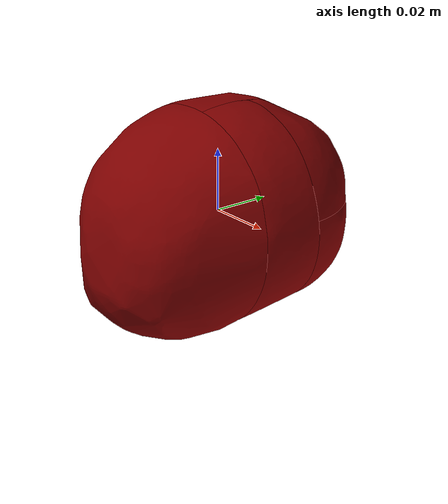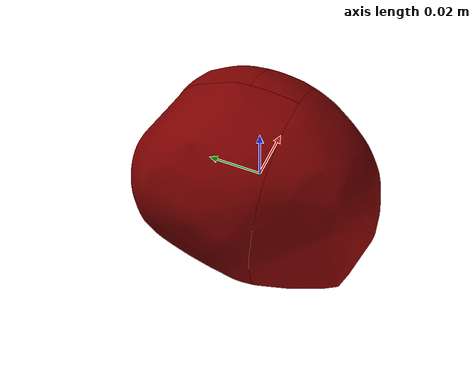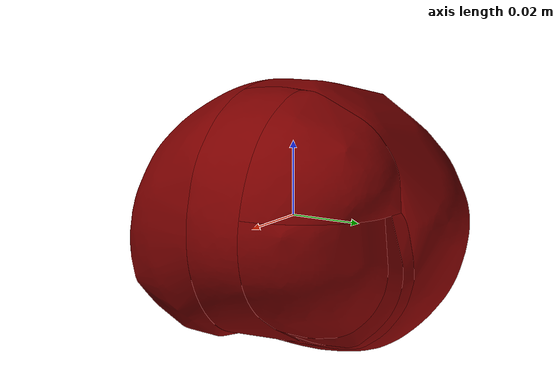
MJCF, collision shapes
<?xml version='1.0' encoding='utf-8'?>
<mujoco model="potato_8">
  <asset>
    <mesh file="visual/model_normalized_0.obj" name="model_normalized_0_vis" scale="0.08999999999999996 0.08999999999999996 0.08999999999999996" refquat="1.0 0.0 0.0 0.0" />
    <texture type="2d" name="image0" file="visual/image0.png" />
    <material name="lambert4SG" texture="image0" specular="0.5" shininess="0.359999993" />
    <mesh file="collision/collision_mesh_collision_0.obj" name="potato_collision_mesh_0" scale="0.08999999999999996 0.08999999999999996 0.08999999999999996" refquat="1.0 0.0 0.0 0.0" />
    <mesh file="collision/collision_mesh_collision_1.obj" name="potato_collision_mesh_1" scale="0.08999999999999996 0.08999999999999996 0.08999999999999996" refquat="1.0 0.0 0.0 0.0" />
    <mesh file="collision/collision_mesh_collision_2.obj" name="potato_collision_mesh_2" scale="0.08999999999999996 0.08999999999999996 0.08999999999999996" refquat="1.0 0.0 0.0 0.0" />
    <mesh file="collision/collision_mesh_collision_3.obj" name="potato_collision_mesh_3" scale="0.08999999999999996 0.08999999999999996 0.08999999999999996" refquat="1.0 0.0 0.0 0.0" />
    <mesh file="collision/collision_mesh_collision_4.obj" name="potato_collision_mesh_4" scale="0.08999999999999996 0.08999999999999996 0.08999999999999996" refquat="1.0 0.0 0.0 0.0" />
    <mesh file="collision/collision_mesh_collision_5.obj" name="potato_collision_mesh_5" scale="0.08999999999999996 0.08999999999999996 0.08999999999999996" refquat="1.0 0.0 0.0 0.0" />
    <mesh file="collision/collision_mesh_collision_6.obj" name="potato_collision_mesh_6" scale="0.08999999999999996 0.08999999999999996 0.08999999999999996" refquat="1.0 0.0 0.0 0.0" />
  </asset>
  <default>
    <default class="region">
      <geom group="1" conaffinity="0" contype="0" rgba="0 1 0 0" />
    </default>
    <default class="collision">
      <geom group="0" rgba="0.5 0 0 0.5" density="1000.0" />
    </default>
  </default>
  <worldbody>
    <body>
      <body name="object">
        <geom solimp="0.998 0.998 0.001" solref="0.001 1" density="100" friction="0.95 0.3 0.1" type="mesh" mesh="model_normalized_0_vis" conaffinity="0" contype="0" group="1" material="lambert4SG" />
        <geom class="region" name="reg_bbox" type="box" pos="-5.153850000000068e-06 8.59500000022217e-08 -2.335140000000151e-05" size="0.03715322264999998 0.04546497194999998 0.036363179699999984" />
        <geom mesh="potato_collision_mesh_0" type="mesh" class="collision" />
        <geom mesh="potato_collision_mesh_1" type="mesh" class="collision" />
        <geom mesh="potato_collision_mesh_2" type="mesh" class="collision" />
        <geom mesh="potato_collision_mesh_3" type="mesh" class="collision" />
        <geom mesh="potato_collision_mesh_4" type="mesh" class="collision" />
        <geom mesh="potato_collision_mesh_5" type="mesh" class="collision" />
        <geom mesh="potato_collision_mesh_6" type="mesh" class="collision" />
      </body>
    <site rgba="0 0 0 0" size="0.005" pos="0 0 -0.036386531" name="bottom_site" /><site rgba="0 0 0 0" size="0.005" pos="0 0 0.036339828" name="top_site" /><site rgba="0 0 0 0" size="0.005" pos="0.045465058 0.045465058 0" name="horizontal_radius_site" /></body>
  </worldbody>
</mujoco>
